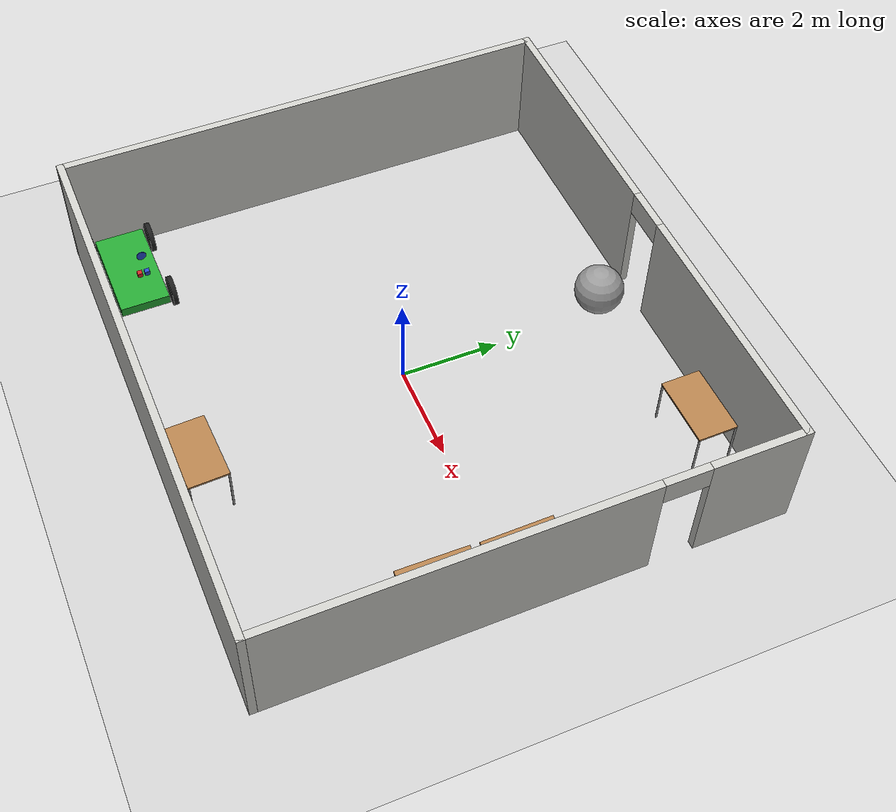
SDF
<sdf version="1.6">
 <world name="default">
  <model name="ground_plane">
   <static>1</static>
   <link name="link">
    <collision name="collision">
     <geometry><plane><normal>0 0 1</normal><size>100 100</size></plane></geometry>
     <surface><friction><ode><mu>100</mu><mu2>50</mu2></ode></friction></surface>
    </collision>
    <visual name="visual">
     <cast_shadows>0</cast_shadows>
     <geometry><plane><normal>0 0 1</normal><size>100 100</size></plane></geometry>
     <material>
      <script><uri>file://media/materials/scripts/gazebo.material</uri><name>Gazebo/Grey</name></script>
     </material>
    </visual>
   </link>
  </model>
  <model name="RRL">
   <pose>-0.007097 0.081598 0 0 -0 0</pose>
   <link name="Wall_0">
    <pose>0 5.0615 0 0 -0 0</pose>
    <visual name="Wall_0_Visual_0">
     <pose>-3.08879 0 1.25 0 -0 0</pose>
     <geometry><box><size>5.04943 0.15 2.5</size></box></geometry>
     <material>
      <script><uri>file://media/materials/scripts/gazebo.material</uri><name>Gazebo/CeilingTiled</name></script>
      <ambient>1 1 1 1</ambient>
     </material>
    </visual>
    <collision name="Wall_0_Collision_0">
     <geometry><box><size>5.04943 0.15 2.5</size></box></geometry>
     <pose>-3.08879 0 1.25 0 -0 0</pose>
    </collision>
    <visual name="Wall_0_Visual_1">
     <pose>2.97472 0 1.25 0 -0 0</pose>
     <geometry><box><size>5.27757 0.15 2.5</size></box></geometry>
     <material>
      <script><uri>file://media/materials/scripts/gazebo.material</uri><name>Gazebo/CeilingTiled</name></script>
      <ambient>1 1 1 1</ambient>
     </material>
    </visual>
    <collision name="Wall_0_Collision_1">
     <geometry><box><size>5.27757 0.15 2.5</size></box></geometry>
     <pose>2.97472 0 1.25 0 -0 0</pose>
    </collision>
    <visual name="Wall_0_Visual_2">
     <pose>-0.11407 0 2.25 0 -0 0</pose>
     <geometry><box><size>0.9 0.15 0.5</size></box></geometry>
     <material>
      <script><uri>file://media/materials/scripts/gazebo.material</uri><name>Gazebo/CeilingTiled</name></script>
      <ambient>1 1 1 1</ambient>
     </material>
    </visual>
    <collision name="Wall_0_Collision_2">
     <geometry><box><size>0.9 0.15 0.5</size></box></geometry>
     <pose>-0.11407 0 2.25 0 -0 0</pose>
    </collision>
   </link>
   <link name="Wall_1">
    <pose>5.5385 0 0 0 0 -1.5708</pose>
    <visual name="Wall_1_Visual_0">
     <pose>-4.16484 0 1.25 0 -0 0</pose>
     <geometry><box><size>1.94333 0.15 2.5</size></box></geometry>
     <material>
      <script><uri>file://media/materials/scripts/gazebo.material</uri><name>Gazebo/CeilingTiled</name></script>
      <ambient>1 1 1 1</ambient>
     </material>
    </visual>
    <collision name="Wall_1_Collision_0">
     <geometry><box><size>1.94333 0.15 2.5</size></box></geometry>
     <pose>-4.16484 0 1.25 0 -0 0</pose>
    </collision>
    <visual name="Wall_1_Visual_1">
     <pose>1.42166 0 1.25 0 -0 0</pose>
     <geometry><box><size>7.42967 0.15 2.5</size></box></geometry>
     <material>
      <script><uri>file://media/materials/scripts/gazebo.material</uri><name>Gazebo/CeilingTiled</name></script>
      <ambient>1 1 1 1</ambient>
     </material>
    </visual>
    <collision name="Wall_1_Collision_1">
     <geometry><box><size>7.42967 0.15 2.5</size></box></geometry>
     <pose>1.42166 0 1.25 0 -0 0</pose>
    </collision>
    <visual name="Wall_1_Visual_2">
     <pose>-2.74317 0 2.25 0 -0 0</pose>
     <geometry><box><size>0.9 0.15 0.5</size></box></geometry>
     <material>
      <script><uri>file://media/materials/scripts/gazebo.material</uri><name>Gazebo/CeilingTiled</name></script>
      <ambient>1 1 1 1</ambient>
     </material>
    </visual>
    <collision name="Wall_1_Collision_2">
     <geometry><box><size>0.9 0.15 0.5</size></box></geometry>
     <pose>-2.74317 0 2.25 0 -0 0</pose>
    </collision>
   </link>
   <link name="Wall_2">
    <collision name="Wall_2_Collision">
     <geometry><box><size>11.227 0.15 2.5</size></box></geometry>
     <pose>0 0 1.25 0 -0 0</pose>
    </collision>
    <visual name="Wall_2_Visual">
     <pose>0 0 1.25 0 -0 0</pose>
     <geometry><box><size>11.227 0.15 2.5</size></box></geometry>
     <material>
      <script><uri>file://media/materials/scripts/gazebo.material</uri><name>Gazebo/CeilingTiled</name></script>
      <ambient>1 1 1 1</ambient>
     </material>
    </visual>
    <pose>0 -5.0615 0 0 -0 3.14159</pose>
   </link>
   <link name="Wall_3">
    <collision name="Wall_3_Collision">
     <geometry><box><size>10.273 0.15 2.5</size></box></geometry>
     <pose>0 0 1.25 0 -0 0</pose>
    </collision>
    <visual name="Wall_3_Visual">
     <pose>0 0 1.25 0 -0 0</pose>
     <geometry><box><size>10.273 0.15 2.5</size></box></geometry>
     <material>
      <script><uri>file://media/materials/scripts/gazebo.material</uri><name>Gazebo/CeilingTiled</name></script>
      <ambient>1 1 1 1</ambient>
     </material>
    </visual>
    <pose>-5.5385 0 0 0 -0 1.5708</pose>
   </link>
   <static>1</static>
  </model>
  <model name="table_clone">
   <static>0</static>
   <link name="link">
    <collision name="surface">
     <pose>0 0 1 0 -0 0</pose>
     <geometry><box><size>1.5 0.8 0.03</size></box></geometry>
     <surface><friction><ode><mu>0.6</mu><mu2>0.6</mu2></ode></friction></surface>
    </collision>
    <visual name="visual1">
     <pose>0 0 1 0 -0 0</pose>
     <geometry><box><size>1.4 0.8 0.04</size></box></geometry>
     <material>
      <script><uri>file://media/materials/scripts/gazebo.material</uri><name>Gazebo/Wood</name></script>
     </material>
    </visual>
    <collision name="front_left_leg">
     <pose>0.68 0.38 0.5 0 -0 0</pose>
     <geometry><cylinder><radius>0.02</radius><length>1</length></cylinder></geometry>
    </collision>
    <visual name="front_left_leg">
     <pose>0.68 0.38 0.5 0 -0 0</pose>
     <geometry><cylinder><radius>0.02</radius><length>1</length></cylinder></geometry>
     <material>
      <script><uri>file://media/materials/scripts/gazebo.material</uri><name>Gazebo/Grey</name></script>
     </material>
    </visual>
    <collision name="front_right_leg">
     <pose>0.68 -0.38 0.5 0 -0 0</pose>
     <geometry><cylinder><radius>0.02</radius><length>1</length></cylinder></geometry>
    </collision>
    <visual name="front_right_leg">
     <pose>0.68 -0.38 0.5 0 -0 0</pose>
     <geometry><cylinder><radius>0.02</radius><length>1</length></cylinder></geometry>
     <material>
      <script><uri>file://media/materials/scripts/gazebo.material</uri><name>Gazebo/Grey</name></script>
     </material>
    </visual>
    <collision name="back_right_leg">
     <pose>-0.68 -0.38 0.5 0 -0 0</pose>
     <geometry><cylinder><radius>0.02</radius><length>1</length></cylinder></geometry>
    </collision>
    <visual name="back_right_leg">
     <pose>-0.68 -0.38 0.5 0 -0 0</pose>
     <geometry><cylinder><radius>0.02</radius><length>1</length></cylinder></geometry>
     <material>
      <script><uri>file://media/materials/scripts/gazebo.material</uri><name>Gazebo/Grey</name></script>
     </material>
    </visual>
    <collision name="back_left_leg">
     <pose>-0.68 0.38 0.5 0 -0 0</pose>
     <geometry><cylinder><radius>0.02</radius><length>1</length></cylinder></geometry>
    </collision>
    <visual name="back_left_leg">
     <pose>-0.68 0.38 0.5 0 -0 0</pose>
     <geometry><cylinder><radius>0.02</radius><length>1</length></cylinder></geometry>
     <material>
      <script><uri>file://media/materials/scripts/gazebo.material</uri><name>Gazebo/Grey</name></script>
     </material>
    </visual>
    <inertial>
     <inertia><ixx>1</ixx><ixy>0</ixy><ixz>0</ixz><iyy>1</iyy><iyz>0</iyz><izz>1</izz></inertia>
     <mass>1</mass>
    </inertial>
   </link>
   <pose>0.919174 -4.39053 -9e-06 0 -0 0.035429</pose>
  </model>
  <model name="table_clone_0_clone_clone_0_clone">
   <static>0</static>
   <link name="link">
    <collision name="surface">
     <pose>0 0 1 0 -0 0</pose>
     <geometry><box><size>1.5 0.8 0.03</size></box></geometry>
     <surface><friction><ode><mu>0.6</mu><mu2>0.6</mu2></ode></friction></surface>
    </collision>
    <visual name="visual1">
     <pose>0 0 1 0 -0 0</pose>
     <geometry><box><size>1.4 0.8 0.04</size></box></geometry>
     <material>
      <script><uri>file://media/materials/scripts/gazebo.material</uri><name>Gazebo/Wood</name></script>
     </material>
    </visual>
    <collision name="front_left_leg">
     <pose>0.68 0.38 0.5 0 -0 0</pose>
     <geometry><cylinder><radius>0.02</radius><length>1</length></cylinder></geometry>
    </collision>
    <visual name="front_left_leg">
     <pose>0.68 0.38 0.5 0 -0 0</pose>
     <geometry><cylinder><radius>0.02</radius><length>1</length></cylinder></geometry>
     <material>
      <script><uri>file://media/materials/scripts/gazebo.material</uri><name>Gazebo/Grey</name></script>
     </material>
    </visual>
    <collision name="front_right_leg">
     <pose>0.68 -0.38 0.5 0 -0 0</pose>
     <geometry><cylinder><radius>0.02</radius><length>1</length></cylinder></geometry>
    </collision>
    <visual name="front_right_leg">
     <pose>0.68 -0.38 0.5 0 -0 0</pose>
     <geometry><cylinder><radius>0.02</radius><length>1</length></cylinder></geometry>
     <material>
      <script><uri>file://media/materials/scripts/gazebo.material</uri><name>Gazebo/Grey</name></script>
     </material>
    </visual>
    <collision name="back_right_leg">
     <pose>-0.68 -0.38 0.5 0 -0 0</pose>
     <geometry><cylinder><radius>0.02</radius><length>1</length></cylinder></geometry>
    </collision>
    <visual name="back_right_leg">
     <pose>-0.68 -0.38 0.5 0 -0 0</pose>
     <geometry><cylinder><radius>0.02</radius><length>1</length></cylinder></geometry>
     <material>
      <script><uri>file://media/materials/scripts/gazebo.material</uri><name>Gazebo/Grey</name></script>
     </material>
    </visual>
    <collision name="back_left_leg">
     <pose>-0.68 0.38 0.5 0 -0 0</pose>
     <geometry><cylinder><radius>0.02</radius><length>1</length></cylinder></geometry>
    </collision>
    <visual name="back_left_leg">
     <pose>-0.68 0.38 0.5 0 -0 0</pose>
     <geometry><cylinder><radius>0.02</radius><length>1</length></cylinder></geometry>
     <material>
      <script><uri>file://media/materials/scripts/gazebo.material</uri><name>Gazebo/Grey</name></script>
     </material>
    </visual>
    <inertial>
     <inertia><ixx>1</ixx><ixy>0</ixy><ixz>0</ixz><iyy>1</iyy><iyz>0</iyz><izz>1</izz></inertia>
     <mass>1</mass>
    </inertial>
   </link>
   <pose>3.46693 4.46373 -1e-06 -0 -2e-06 -3.13584</pose>
  </model>
  <model name="table_clone_0_clone_clone_0_clone_0">
   <static>0</static>
   <link name="link">
    <collision name="surface">
     <pose>0 0 1 0 -0 0</pose>
     <geometry><box><size>1.5 0.8 0.03</size></box></geometry>
     <surface><friction><ode><mu>0.6</mu><mu2>0.6</mu2></ode></friction></surface>
    </collision>
    <visual name="visual1">
     <pose>0 0 1 0 -0 0</pose>
     <geometry><box><size>1.4 0.8 0.04</size></box></geometry>
     <material>
      <script><uri>file://media/materials/scripts/gazebo.material</uri><name>Gazebo/Wood</name></script>
     </material>
    </visual>
    <collision name="front_left_leg">
     <pose>0.68 0.38 0.5 0 -0 0</pose>
     <geometry><cylinder><radius>0.02</radius><length>1</length></cylinder></geometry>
    </collision>
    <visual name="front_left_leg">
     <pose>0.68 0.38 0.5 0 -0 0</pose>
     <geometry><cylinder><radius>0.02</radius><length>1</length></cylinder></geometry>
     <material>
      <script><uri>file://media/materials/scripts/gazebo.material</uri><name>Gazebo/Grey</name></script>
     </material>
    </visual>
    <collision name="front_right_leg">
     <pose>0.68 -0.38 0.5 0 -0 0</pose>
     <geometry><cylinder><radius>0.02</radius><length>1</length></cylinder></geometry>
    </collision>
    <visual name="front_right_leg">
     <pose>0.68 -0.38 0.5 0 -0 0</pose>
     <geometry><cylinder><radius>0.02</radius><length>1</length></cylinder></geometry>
     <material>
      <script><uri>file://media/materials/scripts/gazebo.material</uri><name>Gazebo/Grey</name></script>
     </material>
    </visual>
    <collision name="back_right_leg">
     <pose>-0.68 -0.38 0.5 0 -0 0</pose>
     <geometry><cylinder><radius>0.02</radius><length>1</length></cylinder></geometry>
    </collision>
    <visual name="back_right_leg">
     <pose>-0.68 -0.38 0.5 0 -0 0</pose>
     <geometry><cylinder><radius>0.02</radius><length>1</length></cylinder></geometry>
     <material>
      <script><uri>file://media/materials/scripts/gazebo.material</uri><name>Gazebo/Grey</name></script>
     </material>
    </visual>
    <collision name="back_left_leg">
     <pose>-0.68 0.38 0.5 0 -0 0</pose>
     <geometry><cylinder><radius>0.02</radius><length>1</length></cylinder></geometry>
    </collision>
    <visual name="back_left_leg">
     <pose>-0.68 0.38 0.5 0 -0 0</pose>
     <geometry><cylinder><radius>0.02</radius><length>1</length></cylinder></geometry>
     <material>
      <script><uri>file://media/materials/scripts/gazebo.material</uri><name>Gazebo/Grey</name></script>
     </material>
    </visual>
    <inertial>
     <inertia><ixx>1</ixx><ixy>0</ixy><ixz>0</ixz><iyy>1</iyy><iyz>0</iyz><izz>1</izz></inertia>
     <mass>1</mass>
    </inertial>
   </link>
   <pose>4.99059 0.230341 -9e-06 0 1e-06 1.57752</pose>
  </model>
  <model name="table_clone_0_clone_clone_0_clone_0_clone">
   <static>0</static>
   <link name="link">
    <collision name="surface">
     <pose>0 0 1 0 -0 0</pose>
     <geometry><box><size>1.5 0.8 0.03</size></box></geometry>
     <surface><friction><ode><mu>0.6</mu><mu2>0.6</mu2></ode></friction></surface>
    </collision>
    <visual name="visual1">
     <pose>0 0 1 0 -0 0</pose>
     <geometry><box><size>1.4 0.8 0.04</size></box></geometry>
     <material>
      <script><uri>file://media/materials/scripts/gazebo.material</uri><name>Gazebo/Wood</name></script>
     </material>
    </visual>
    <collision name="front_left_leg">
     <pose>0.68 0.38 0.5 0 -0 0</pose>
     <geometry><cylinder><radius>0.02</radius><length>1</length></cylinder></geometry>
    </collision>
    <visual name="front_left_leg">
     <pose>0.68 0.38 0.5 0 -0 0</pose>
     <geometry><cylinder><radius>0.02</radius><length>1</length></cylinder></geometry>
     <material>
      <script><uri>file://media/materials/scripts/gazebo.material</uri><name>Gazebo/Grey</name></script>
     </material>
    </visual>
    <collision name="front_right_leg">
     <pose>0.68 -0.38 0.5 0 -0 0</pose>
     <geometry><cylinder><radius>0.02</radius><length>1</length></cylinder></geometry>
    </collision>
    <visual name="front_right_leg">
     <pose>0.68 -0.38 0.5 0 -0 0</pose>
     <geometry><cylinder><radius>0.02</radius><length>1</length></cylinder></geometry>
     <material>
      <script><uri>file://media/materials/scripts/gazebo.material</uri><name>Gazebo/Grey</name></script>
     </material>
    </visual>
    <collision name="back_right_leg">
     <pose>-0.68 -0.38 0.5 0 -0 0</pose>
     <geometry><cylinder><radius>0.02</radius><length>1</length></cylinder></geometry>
    </collision>
    <visual name="back_right_leg">
     <pose>-0.68 -0.38 0.5 0 -0 0</pose>
     <geometry><cylinder><radius>0.02</radius><length>1</length></cylinder></geometry>
     <material>
      <script><uri>file://media/materials/scripts/gazebo.material</uri><name>Gazebo/Grey</name></script>
     </material>
    </visual>
    <collision name="back_left_leg">
     <pose>-0.68 0.38 0.5 0 -0 0</pose>
     <geometry><cylinder><radius>0.02</radius><length>1</length></cylinder></geometry>
    </collision>
    <visual name="back_left_leg">
     <pose>-0.68 0.38 0.5 0 -0 0</pose>
     <geometry><cylinder><radius>0.02</radius><length>1</length></cylinder></geometry>
     <material>
      <script><uri>file://media/materials/scripts/gazebo.material</uri><name>Gazebo/Grey</name></script>
     </material>
    </visual>
    <inertial>
     <inertia><ixx>1</ixx><ixy>0</ixy><ixz>0</ixz><iyy>1</iyy><iyz>0</iyz><izz>1</izz></inertia>
     <mass>1</mass>
    </inertial>
   </link>
   <pose>4.96853 -1.3573 -9e-06 0 1e-06 1.55384</pose>
  </model>
  <model name="unit_sphere_0">
   <pose>-0.14732 4.31918 0.5 0 -0 0</pose>
   <link name="link">
    <inertial>
     <mass>1</mass>
     <inertia><ixx>0.1</ixx><ixy>0</ixy><ixz>0</ixz><iyy>0.1</iyy><iyz>0</iyz><izz>0.1</izz></inertia>
    </inertial>
    <collision name="collision"><geometry><sphere><radius>0.5</radius></sphere></geometry></collision>
    <visual name="visual">
     <geometry><sphere><radius>0.5</radius></sphere></geometry>
     <material>
      <script><name>Gazebo/Grey</name><uri>file://media/materials/scripts/gazebo.material</uri></script>
     </material>
    </visual>
   </link>
  </model>
  <model name="car">
   <link name="chassis">
    <pose>0 0 0.3 0 -0 0</pose>
    <collision name="collision"><geometry><box><size>2 1 0.2</size></box></geometry></collision>
    <visual name="visual">
     <geometry><box><size>2 1 0.2</size></box></geometry>
     <material>
      <script><uri>file://media/materials/scripts/gazebo.material</uri><name>Gazebo/Green</name></script>
     </material>
    </visual>
    <inertial>
     <inertia><ixx>1</ixx><ixy>0</ixy><ixz>0</ixz><iyy>1</iyy><iyz>0</iyz><izz>1</izz></inertia>
     <mass>1</mass>
    </inertial>
   </link>
   <link name="front_left_wheel">
    <pose>0.8 0.6 0.3 -0 1.5707 1.5707</pose>
    <collision name="collision">
     <geometry><cylinder><radius>0.3</radius><length>0.1</length></cylinder></geometry>
    </collision>
    <visual name="visual">
     <geometry><cylinder><radius>0.3</radius><length>0.1</length></cylinder></geometry>
     <material>
      <script><uri>file://media/materials/scripts/gazebo.material</uri><name>Gazebo/Black</name></script>
     </material>
    </visual>
    <inertial>
     <inertia><ixx>1</ixx><ixy>0</ixy><ixz>0</ixz><iyy>1</iyy><iyz>0</iyz><izz>1</izz></inertia>
     <mass>1</mass>
    </inertial>
   </link>
   <link name="front_right_wheel">
    <pose>0.8 -0.6 0.3 -0 1.5707 1.5707</pose>
    <collision name="collision">
     <geometry><cylinder><radius>0.3</radius><length>0.1</length></cylinder></geometry>
    </collision>
    <visual name="visual">
     <geometry><cylinder><radius>0.3</radius><length>0.1</length></cylinder></geometry>
     <material>
      <script><uri>file://media/materials/scripts/gazebo.material</uri><name>Gazebo/Black</name></script>
     </material>
    </visual>
    <inertial>
     <inertia><ixx>1</ixx><ixy>0</ixy><ixz>0</ixz><iyy>1</iyy><iyz>0</iyz><izz>1</izz></inertia>
     <mass>1</mass>
    </inertial>
   </link>
   <link name="back_right_wheel">
    <pose>-0.8 -0.6 0.3 -0 1.5707 1.5707</pose>
    <collision name="collision">
     <geometry><cylinder><radius>0.3</radius><length>0.1</length></cylinder></geometry>
    </collision>
    <visual name="visual">
     <geometry><cylinder><radius>0.3</radius><length>0.1</length></cylinder></geometry>
     <material>
      <script><uri>file://media/materials/scripts/gazebo.material</uri><name>Gazebo/Black</name></script>
     </material>
    </visual>
    <inertial>
     <inertia><ixx>1</ixx><ixy>0</ixy><ixz>0</ixz><iyy>1</iyy><iyz>0</iyz><izz>1</izz></inertia>
     <mass>1</mass>
    </inertial>
   </link>
   <link name="back_left_wheel">
    <pose>-0.8 0.6 0.3 -0 1.5707 1.5707</pose>
    <collision name="collision">
     <geometry><cylinder><radius>0.3</radius><length>0.1</length></cylinder></geometry>
    </collision>
    <visual name="visual">
     <geometry><cylinder><radius>0.3</radius><length>0.1</length></cylinder></geometry>
     <material>
      <script><uri>file://media/materials/scripts/gazebo.material</uri><name>Gazebo/Black</name></script>
     </material>
    </visual>
    <inertial>
     <inertia><ixx>1</ixx><ixy>0</ixy><ixz>0</ixz><iyy>1</iyy><iyz>0</iyz><izz>1</izz></inertia>
     <mass>1</mass>
    </inertial>
   </link>
   <link name="gas_pedal">
    <pose>0.3 0.1 0.5 0 -0 0</pose>
    <collision name="collision"><geometry><box><size>0.1 0.1 0.1</size></box></geometry></collision>
    <visual name="visual">
     <geometry><box><size>0.1 0.1 0.1</size></box></geometry>
     <material>
      <script><uri>file://media/materials/scripts/gazebo.material</uri><name>Gazebo/Red</name></script>
     </material>
    </visual>
    <inertial>
     <inertia><ixx>1</ixx><ixy>0</ixy><ixz>0</ixz><iyy>1</iyy><iyz>0</iyz><izz>1</izz></inertia>
     <mass>1</mass>
    </inertial>
   </link>
   <link name="brake_pedal">
    <pose>0.3 0.25 0.5 0 -0 0</pose>
    <collision name="collision"><geometry><box><size>0.1 0.1 0.1</size></box></geometry></collision>
    <visual name="visual">
     <geometry><box><size>0.1 0.1 0.1</size></box></geometry>
     <material>
      <script><uri>file://media/materials/scripts/gazebo.material</uri><name>Gazebo/Blue</name></script>
     </material>
    </visual>
    <inertial>
     <inertia><ixx>1</ixx><ixy>0</ixy><ixz>0</ixz><iyy>1</iyy><iyz>0</iyz><izz>1</izz></inertia>
     <mass>1</mass>
    </inertial>
   </link>
   <link name="steering_wheel">
    <pose>0.3 0.2 1 0 1.5707 0</pose>
    <collision name="collision">
     <geometry><cylinder><radius>0.1</radius><length>0.01</length></cylinder></geometry>
    </collision>
    <visual name="visual">
     <geometry><cylinder><radius>0.1</radius><length>0.01</length></cylinder></geometry>
     <material>
      <script><uri>file://media/materials/scripts/gazebo.material</uri><name>Gazebo/Blue</name></script>
     </material>
    </visual>
    <inertial>
     <inertia><ixx>1</ixx><ixy>0</ixy><ixz>0</ixz><iyy>1</iyy><iyz>0</iyz><izz>1</izz></inertia>
     <mass>1</mass>
    </inertial>
   </link>
   <joint name="gas_joint" type="prismatic">
    <parent>chassis</parent>
    <child>gas_pedal</child>
    <axis>
     <xyz>1 0 0</xyz>
     <limit><lower>0</lower><upper>0.2</upper></limit>
     <use_parent_model_frame>1</use_parent_model_frame>
     <dynamics><spring_reference>0</spring_reference><spring_stiffness>0</spring_stiffness></dynamics>
    </axis>
   </joint>
   <joint name="brake_joint" type="prismatic">
    <parent>chassis</parent>
    <child>brake_pedal</child>
    <axis>
     <xyz>1 0 0</xyz>
     <limit><lower>0</lower><upper>0.2</upper></limit>
     <use_parent_model_frame>1</use_parent_model_frame>
     <dynamics><spring_reference>0</spring_reference><spring_stiffness>0</spring_stiffness></dynamics>
    </axis>
   </joint>
   <joint name="steering_joint" type="revolute">
    <parent>chassis</parent>
    <child>steering_wheel</child>
    <axis>
     <xyz>1 0 0</xyz>
     <limit><lower>-7.853</lower><upper>7.853</upper></limit>
     <use_parent_model_frame>1</use_parent_model_frame>
     <dynamics><spring_reference>0</spring_reference><spring_stiffness>0</spring_stiffness></dynamics>
    </axis>
   </joint>
   <joint name="front_left_joint" type="revolute2">
    <parent>chassis</parent>
    <child>front_left_wheel</child>
    <axis>
     <xyz>0 0 1</xyz>
     <limit><lower>1.56855e-05</lower><upper>1.56855e-05</upper></limit>
     <use_parent_model_frame>1</use_parent_model_frame>
     <dynamics><spring_reference>0</spring_reference><spring_stiffness>0</spring_stiffness></dynamics>
    </axis>
    <axis2>
     <xyz>0 1 0</xyz>
     <use_parent_model_frame>1</use_parent_model_frame>
     <dynamics><spring_reference>0</spring_reference><spring_stiffness>0</spring_stiffness></dynamics>
    </axis2>
    <physics><ode><limit><cfm>0</cfm><erp>0.9</erp></limit></ode></physics>
   </joint>
   <joint name="front_right_joint" type="revolute2">
    <parent>chassis</parent>
    <child>front_right_wheel</child>
    <axis>
     <xyz>0 0 1</xyz>
     <limit><lower>1.56855e-05</lower><upper>1.56855e-05</upper></limit>
     <use_parent_model_frame>1</use_parent_model_frame>
     <dynamics><spring_reference>0</spring_reference><spring_stiffness>0</spring_stiffness></dynamics>
    </axis>
    <axis2>
     <xyz>0 1 0</xyz>
     <use_parent_model_frame>1</use_parent_model_frame>
     <dynamics><spring_reference>0</spring_reference><spring_stiffness>0</spring_stiffness></dynamics>
    </axis2>
    <physics><ode><limit><cfm>0</cfm><erp>0.9</erp></limit></ode></physics>
   </joint>
   <joint name="back_right_joint" type="revolute2">
    <parent>chassis</parent>
    <child>back_right_wheel</child>
    <axis>
     <xyz>0 0 1</xyz>
     <limit><lower>0</lower><upper>0</upper></limit>
     <use_parent_model_frame>1</use_parent_model_frame>
     <dynamics><spring_reference>0</spring_reference><spring_stiffness>0</spring_stiffness></dynamics>
    </axis>
    <axis2>
     <xyz>0 1 0</xyz>
     <use_parent_model_frame>1</use_parent_model_frame>
     <dynamics><spring_reference>0</spring_reference><spring_stiffness>0</spring_stiffness></dynamics>
    </axis2>
    <physics><ode><limit><cfm>0</cfm><erp>0.9</erp></limit></ode></physics>
   </joint>
   <joint name="back_left_joint" type="revolute2">
    <parent>chassis</parent>
    <child>back_left_wheel</child>
    <axis>
     <xyz>0 0 1</xyz>
     <limit><lower>0</lower><upper>0</upper></limit>
     <use_parent_model_frame>1</use_parent_model_frame>
     <dynamics><spring_reference>0</spring_reference><spring_stiffness>0</spring_stiffness></dynamics>
    </axis>
    <axis2>
     <xyz>0 1 0</xyz>
     <use_parent_model_frame>1</use_parent_model_frame>
     <dynamics><spring_reference>0</spring_reference><spring_stiffness>0</spring_stiffness></dynamics>
    </axis2>
    <physics><ode><limit><cfm>0</cfm><erp>0.9</erp></limit></ode></physics>
   </joint>
   <plugin name="vehicle" filename="libVehiclePlugin.so">
    <front_left>front_left_joint</front_left>
    <front_right>front_right_joint</front_right>
    <back_left>back_left_joint</back_left>
    <back_right>back_right_joint</back_right>
    <gas>gas_joint</gas>
    <brake>brake_joint</brake>
    <steering>steering_joint</steering>
    <front_power>10</front_power>
    <rear_power>10</rear_power>
    <tire_angle_range>0.5</tire_angle_range>
    <max_speed>10</max_speed>
    <aero_load>0.1</aero_load>
   </plugin>
   <pose>-4.37083 -4.17557 -0.002615 -0.000273 0.000907 2.4e-05</pose>
  </model>
 </world>
</sdf>
